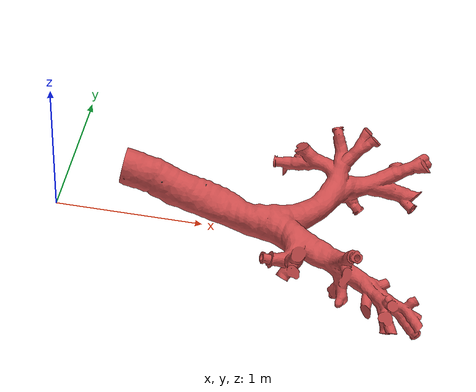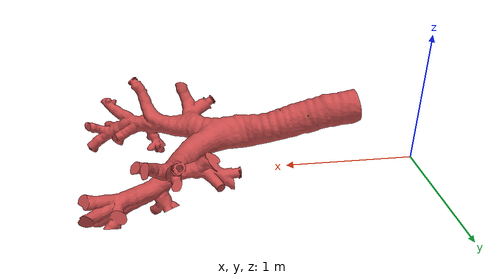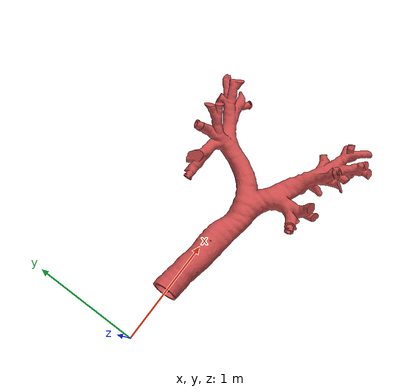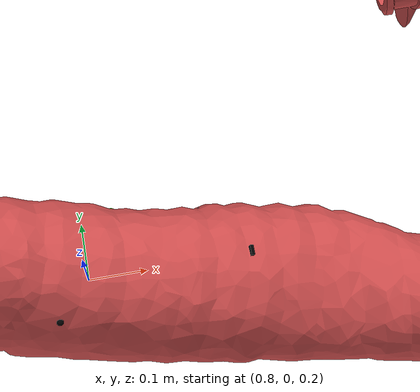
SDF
<?xml version="1.0" ?>
<sdf version="1.8">
  <world name="airway_world">
    <plugin filename="gz-sim-physics-system" name="gz::sim::systems::Physics"></plugin>
    <plugin filename="gz-sim-user-commands-system" name="gz::sim::systems::UserCommands"></plugin>
    <plugin filename="gz-sim-scene-broadcaster-system" name="gz::sim::systems::SceneBroadcaster"></plugin>
    <plugin filename="gz-sim-sensors-system" name="gz::sim::systems::Sensors">
      <render_engine>ogre2</render_engine>
    </plugin>

    <physics name="1ms" type="ignored">
      <max_step_size>0.001</max_step_size>
      <real_time_factor>1.0</real_time_factor>
    </physics>

    <scene>
      <ambient>0.4 0.4 0.4 1.0</ambient>
      <background>0.7 0.7 0.7 1.0</background>
      <shadows>true</shadows>
    </scene>

    <light type="directional" name="sun">
      <cast_shadows>true</cast_shadows>
      <pose>0 0 10 0 0 0</pose>
      <diffuse>0.8 0.8 0.8 1</diffuse>
      <specular>0.2 0.2 0.2 1</specular>
      <direction>-0.5 0.1 -0.9</direction>
    </light>

    <model name="trachea_tube">
      <static>true</static>
      <pose>0.44 -0.22 2.82 -1.57 -0.01 1.60</pose>

      <link name="tube_link">
        <collision name="tube_collision">
          <geometry>
            <mesh>
              <uri>package://smart_endoscope/meshes/Exterior.stl</uri>
              <scale>0.01 0.01 0.01</scale>
            </mesh>
          </geometry>
          <surface>
            <friction><ode><mu>0.1</mu><mu2>0.1</mu2></ode></friction>
          </surface>
        </collision>

        <visual name="tube_visual">
          <geometry>
            <mesh>
              <uri>package://smart_endoscope/meshes/Exterior.stl</uri>
              <scale>0.01 0.01 0.01</scale>
            </mesh>
          </geometry>
          <material>

            <ambient>0.6 0.2 0.2 1</ambient>
            <diffuse>0.8 0.3 0.3 1</diffuse>
            <specular>0.1 0.1 0.1 1</specular>
          </material>
        </visual>
      </link>
    </model>

<model name="anomaly_hemorrhage">
  <static>true</static>
  <pose>0.77 -0.15 0.48 0 0 0</pose>
  <link name="link">
    <visual name="visual">
      <geometry><sphere><radius>0.005</radius></sphere></geometry>
      <material>
        <ambient>0 0 0 1</ambient>
        <diffuse>0 0 0 1</diffuse>
        <emissive>1 0 0 1</emissive>
      </material>
    </visual>
  </link>
</model>

<model name="anomaly_Lipoma">
  <static>true</static>
  <pose>1.05 -0.08 0.44 -1.30 -1.32 -0.26</pose>
  <link name="link">
    <visual name="visual">
      <geometry><box><size>0.015 0.005 0.015</size></box></geometry>
      <material>
        <ambient>0 0 0 1</ambient>
        <diffuse>0 0 0 1</diffuse>
        <emissive>1 1 0 1</emissive> </material>
    </visual>
  </link>
</model>

<model name="anomaly_mucus">
  <static>true</static>
  <pose>0.86 0.02 0.43 0.26 0 0</pose>
  <link name="link">
    <visual name="visual">
      <geometry><cylinder><radius>0.004</radius><length>0.02</length></cylinder></geometry>
      <material>
        <ambient>0 1 0 1</ambient>
        <diffuse>0 1 0 1</diffuse> </material>
    </visual>
  </link>
</model>

<model name="anomaly_necrotic">
  <static>true</static>
  <pose>0.99 0.01 0.40 0 0 0</pose>
  <link name="link">
    <visual name="visual">
      <geometry><sphere><radius>0.006</radius></sphere></geometry>
      <material>
        <ambient>0 0 0 1</ambient>
        <diffuse>0 0 0 1</diffuse>
        <emissive>0 0 1 1</emissive>
      </material>
    </visual>
  </link>
</model>

  </world>
</sdf>
